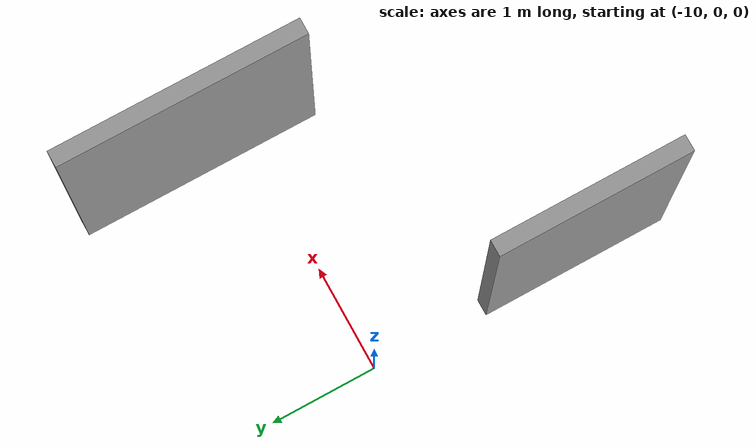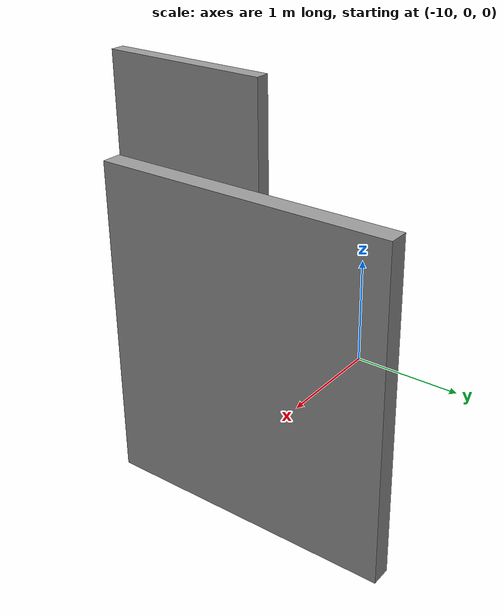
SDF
<?xml version='1.0'?>
<sdf version='1.7'>
  <model name='test1'>
    <pose>-5.02977 -0.605083 0 0 -0 0</pose>
    <link name='Wall_11'>
      <collision name='Wall_11_Collision'>
        <geometry>
          <box>
            <size>2.25 0.15 2.5</size>
          </box>
        </geometry>
        <pose>0 0 1.25 0 -0 0</pose>
      </collision>
      <visual name='Wall_11_Visual'>
        <pose>0 0 1.25 0 -0 0</pose>
        <geometry>
          <box>
            <size>2.25 0.15 2.5</size>
          </box>
        </geometry>
        <material>
          <script>
            <uri>file://media/materials/scripts/gazebo.material</uri>
            <name>Gazebo/Grey</name>
          </script>
          <ambient>1 1 1 1</ambient>
        </material>
        <meta>
          <layer>0</layer>
        </meta>
      </visual>
      <pose>-2.66261 1.09315 0 0 -0 -1.5708</pose>
    </link>
    <link name='Wall_4'>
      <collision name='Wall_4_Collision'>
        <geometry>
          <box>
            <size>1.75 0.15 2.5</size>
          </box>
        </geometry>
        <pose>0 0 1.25 0 -0 0</pose>
      </collision>
      <visual name='Wall_4_Visual'>
        <pose>0 0 1.25 0 -0 0</pose>
        <geometry>
          <box>
            <size>1.75 0.15 2.5</size>
          </box>
        </geometry>
        <material>
          <script>
            <uri>file://media/materials/scripts/gazebo.material</uri>
            <name>Gazebo/Grey</name>
          </script>
          <ambient>1 1 1 1</ambient>
        </material>
        <meta>
          <layer>0</layer>
        </meta>
      </visual>
      <pose>-4.95477 -1.34315 0 0 -0 1.5708</pose>
    </link>
    <static>1</static>
  </model>
</sdf>
